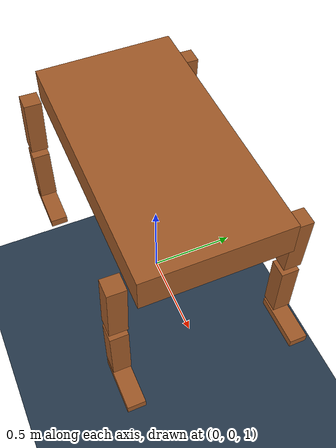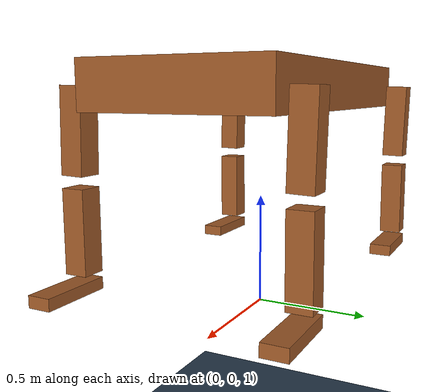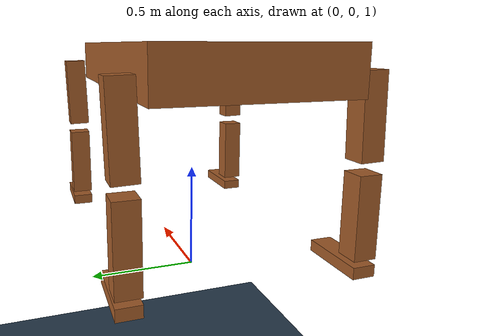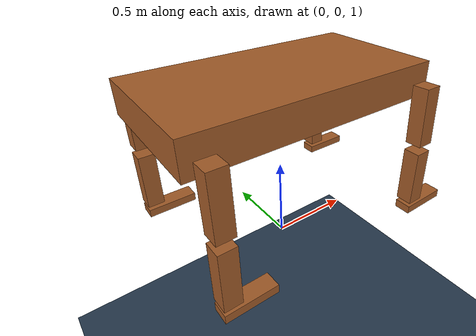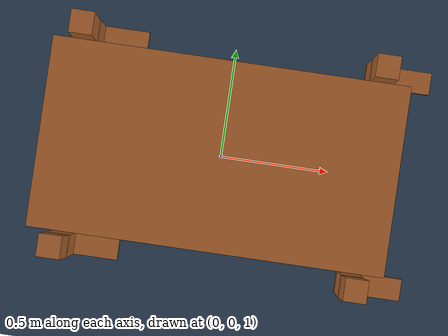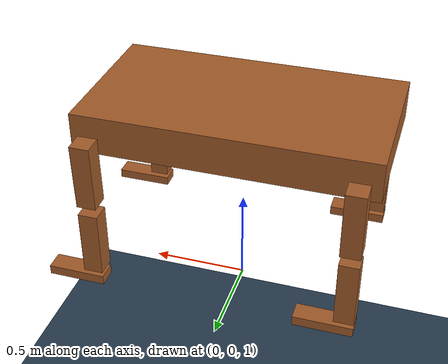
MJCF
<mujoco model="Quadruped">
    <compiler inertiafromgeom="true" angle="degree"/>

    <default>
        <joint limited="true" damping="1" armature="0"/>
        <geom condim="1" material="matgeom"/>
        <motor ctrlrange="-.4 .4" ctrllimited="true"/>
    </default>

    <option timestep="0.005" iterations="50" tolerance="1e-10" solver="Newton" jacobian="dense" cone="pyramidal"/>

    <size nconmax="1000" njmax="1000" nstack="1000000"/>

    <visual>
        <map force="0.1" zfar="30"/>
        <rgba haze="0.15 0.25 0.35 1"/>
        <quality shadowsize="2048"/>
        <global offwidth="800" offheight="800"/>
    </visual>

    <asset>
        <texture type="skybox" builtin="gradient" rgb1="0.3 0.5 0.7" rgb2="0 0 0" width="512" height="512"/>

        <texture name="texplane" type="2d" builtin="checker" rgb1=".2 .3 .4" rgb2=".1 0.15 0.2" width="512" height="512" mark="cross" markrgb=".8 .8 .8"/>

        <texture name="texgeom" type="cube" builtin="flat" mark="cross" width="127" height="1278" rgb1="0.8 0.6 0.4" rgb2="0.8 0.6 0.4" markrgb="1 1 1" random="0.01"/>

        <material name="matplane" reflectance="0.3" texture="texplane" texrepeat="1 1" texuniform="true"/>

        <material name="matgeom" texture="texgeom" texuniform="true" rgba="0.8 0.6 .4 1"/>
    </asset>

    <worldbody>
        <geom name="floor" pos="0 0 0" size="0 0 .25" type="plane" material="matplane" condim="3"/>

        <light directional="true" diffuse=".4 .4 .4" specular="0.1 0.1 0.1" pos="0 0 5.0" dir="0 0 -1" castshadow="false"/>
        <light directional="true" diffuse=".6 .6 .6" specular="0.2 0.2 0.2" pos="0 0 4" dir="0 0 -1"/>

        <light mode="targetbodycom" target="torso" directional="false" diffuse=".8 .8 .8" specular="0.3 0.3 0.3" pos="0 0 4.0" dir="0 0 -1"/>

        <body name="torso" pos="0 0 2">
            <freejoint name="root"/>
            <geom name="torso1" type="box" pos="0 0 0" size="0.75 0.4 0.1" density="100"/>

            <body name="fl_thigh" pos="0.65 0.475 0" >
                <joint name="fl_hip" type="hinge" pos="0 0 0" axis="0 -1 0" range="-180 180" damping="1" stiffness="5" armature="0.01" />
                <geom name="fl_thigh1" type="box" fromto="0 0 0 0 -0.01 -0.35" size="0.05" />
                <body name="fl_shin" pos="0 -0.01 -0.4" >
                    <joint name="fl_knee" type="hinge" pos="0 0 0.02" axis="0 -1 0" range="-180 180" stiffness="5" armature="0.0060" />
                    <geom name="fl_shin1" type="box" fromto="0 0 0 0 0 -0.35" size="0.05" />
                    <body name="fl_foot" pos="0 0 -0.4" >
                        <joint name="fl_ankle" type="hinge" pos="0 0 0.08" axis="0 1 0" range="-180 180"  stiffness="5" armature="0.0008" />
                        <geom name="fl_foot_cap" type="box" pos="0.1 0 0" size="0.15 0.05 0.025" />
                    </body>
                </body>
            </body>

            <body name="fr_thigh" pos="0.65 -0.475 0" >
                <joint name="fr_hip" type="hinge" pos="0 0 0" axis="0 -1 0" range="-180 180" damping="1" stiffness="5" armature="0.01" />
                <geom name="fr_thigh1" type="box" fromto="0 0 0 0 -0.01 -0.35" size="0.05" />
                <body name="fr_shin" pos="0 -0.01 -0.4" >
                    <joint name="fr_knee" type="hinge" pos="0 0 0.02" axis="0 -1 0" range="-180 180" stiffness="5" armature="0.0060" />
                    <geom name="fr_shin1" type="box" fromto="0 0 0 0 0 -0.35" size="0.05" />
                    <body name="fr_foot" pos="0 0 -0.4" >
                        <joint name="fr_ankle" type="hinge" pos="0 0 0.08" axis="0 1 0" range="-180 180"  stiffness="5" armature="0.0008" />
                        <geom name="fr_foot_cap" type="box" pos="0.1 0 0" size="0.15 0.05 0.025" />
                    </body>
                </body>
            </body>

            <body name="rl_thigh" pos="-0.65 0.475 0" >
                <joint name="rl_hip" type="hinge" pos="0 0 0" axis="0 -1 0" range="-180 180" damping="1" stiffness="5" armature="0.01" />
                <geom name="rl_thigh1" type="box" fromto="0 0 0 0 -0.01 -0.35" size="0.05" />
                <body name="rl_shin" pos="0 -0.01 -0.4" >
                    <joint name="rl_knee" type="hinge" pos="0 0 0.02" axis="0 -1 0" range="-180 180" stiffness="5" armature="0.0060" />
                    <geom name="rl_shin1" type="box" fromto="0 0 0 0 0 -0.35" size="0.05" />
                    <body name="rl_foot" pos="0 0 -0.4" >
                        <joint name="rl_ankle" type="hinge" pos="0 0 0.08" axis="0 1 0" range="-180 180"  stiffness="5" armature="0.0008" />
                        <geom name="rl_foot_cap" type="box" pos="0.1 0 0" size="0.15 0.05 0.025" />
                    </body>
                </body>
            </body>

            <body name="rr_thigh" pos="-0.65 -0.475 0" >
                <joint name="rr_hip" type="hinge" pos="0 0 0" axis="0 -1 0" range="-180 180" damping="1" stiffness="5" armature="0.01" />
                <geom name="rr_thigh1" type="box" fromto="0 0 0 0 -0.01 -0.35" size="0.05" />
                <body name="rr_shin" pos="0 -0.01 -0.4" >
                    <joint name="rr_knee" type="hinge" pos="0 0 0.02" axis="0 -1 0" range="-180 180" stiffness="5" armature="0.0060" />
                    <geom name="rr_shin1" type="box" fromto="0 0 0 0 0 -0.35" size="0.05" />
                    <body name="rr_foot" pos="0 0 -0.4" >
                        <joint name="rr_ankle" type="hinge" pos="0 0 0.08" axis="0 1 0" range="-180 180"  stiffness="5" armature="0.0008" />
                        <geom name="rr_foot_cap" type="box" pos="0.1 0 0" size="0.15 0.05 0.025" />
                    </body>
                </body>
            </body>

            <camera name="side_follow_camera" euler="75 0 0" pos="0 -10 2.5"/>
            <camera name="back_follow_camera" euler="0 -75 -90" pos="-5 0 2.5"/>
        </body>
    </worldbody>

    <actuator>
        <position name="fl_hip" kp="100" gear="1" ctrlrange="-3.14159265359 3.14159265359" joint="fl_hip" />
        <position name="fl_knee" kp="100" gear="1" ctrlrange="-3.14159265359 3.14159265359" joint="fl_knee" />
        <position name="fl_ankle" kp="100" gear="1" ctrlrange="-3.14159265359 3.14159265359" joint="fl_ankle" />

        <position name="fr_hip" kp="100" gear="1" ctrlrange="-3.14159265359 3.14159265359" joint="fr_hip" />
        <position name="fr_knee" kp="100" gear="1" ctrlrange="-3.14159265359 3.14159265359" joint="fr_knee" />
        <position name="fr_ankle" kp="100" gear="1" ctrlrange="-3.14159265359 3.14159265359" joint="fr_ankle" />

        <position name="rl_hip" kp="100" gear="1" ctrlrange="-3.14159265359 3.14159265359" joint="rl_hip" />
        <position name="rl_knee" kp="100" gear="1" ctrlrange="-3.14159265359 3.14159265359" joint="rl_knee" />
        <position name="rl_ankle" kp="100" gear="1" ctrlrange="-3.14159265359 3.14159265359" joint="rl_ankle" />

        <position name="rr_hip" kp="100" gear="1" ctrlrange="-3.14159265359 3.14159265359" joint="rr_hip" />
        <position name="rr_knee" kp="100" gear="1" ctrlrange="-3.14159265359 3.14159265359" joint="rr_knee" />
        <position name="rr_ankle" kp="100" gear="1" ctrlrange="-3.14159265359 3.14159265359" joint="rr_ankle" />
    </actuator>
</mujoco>
